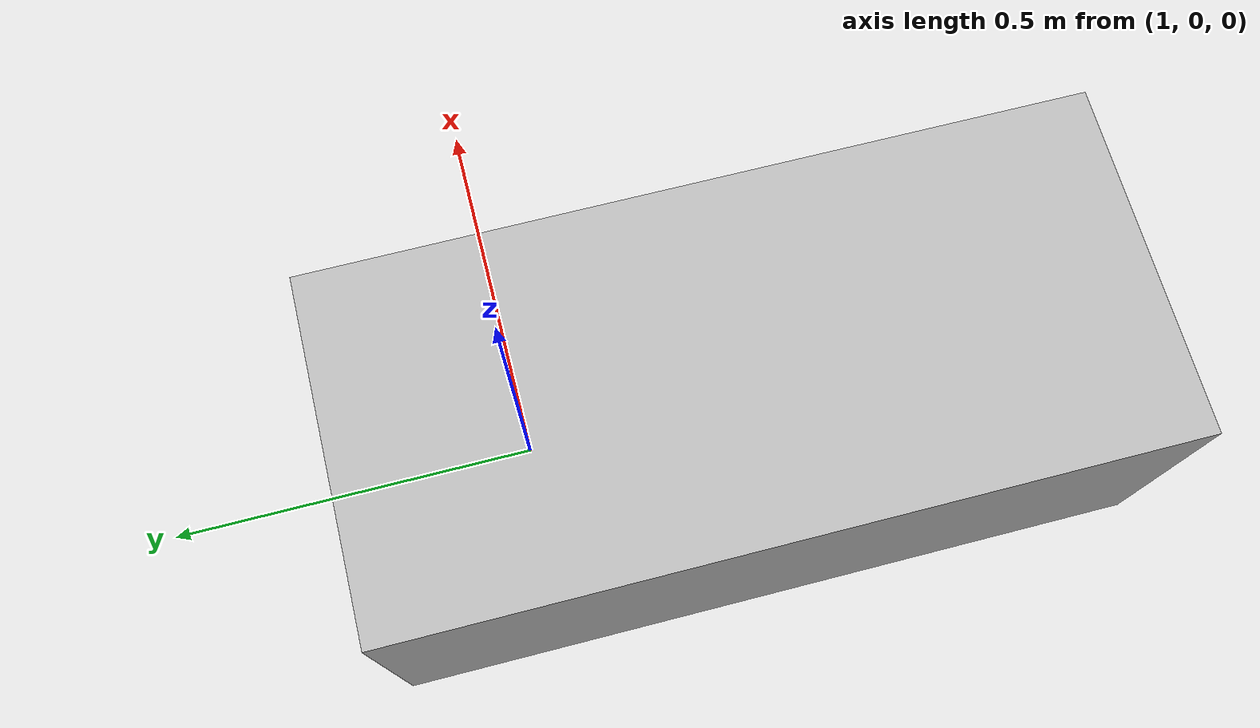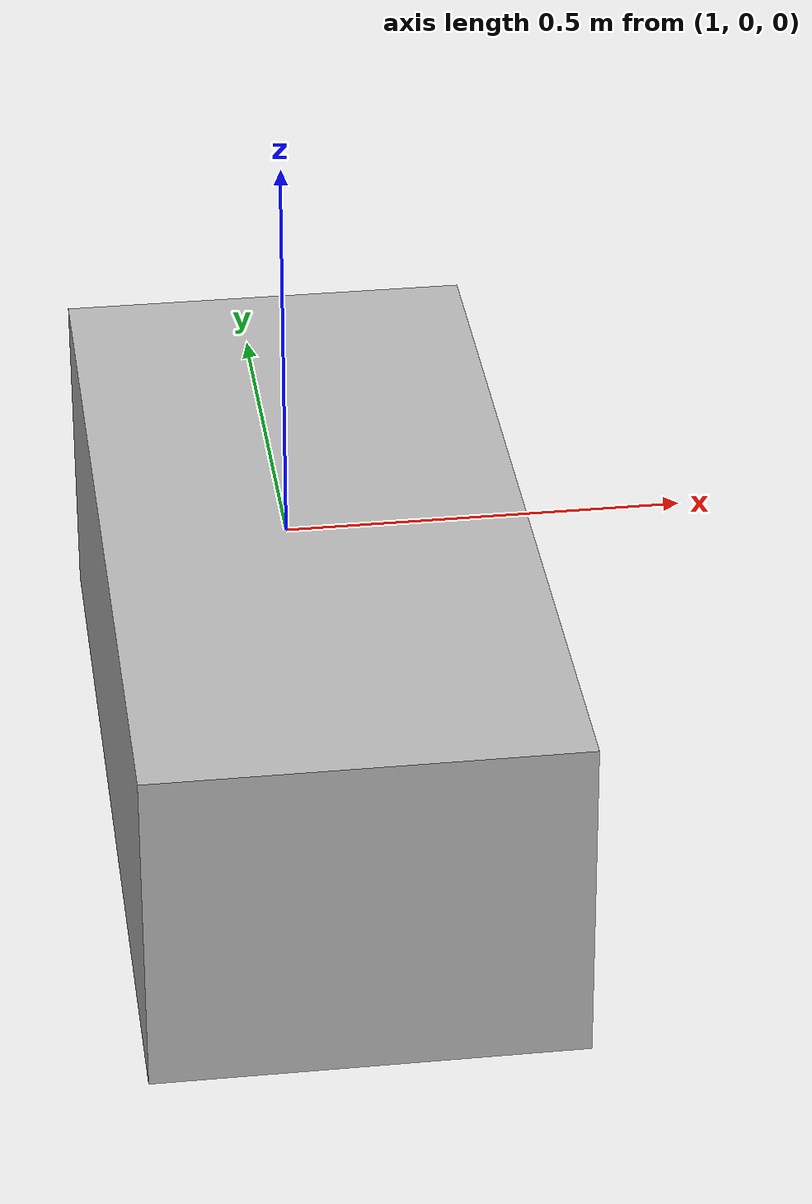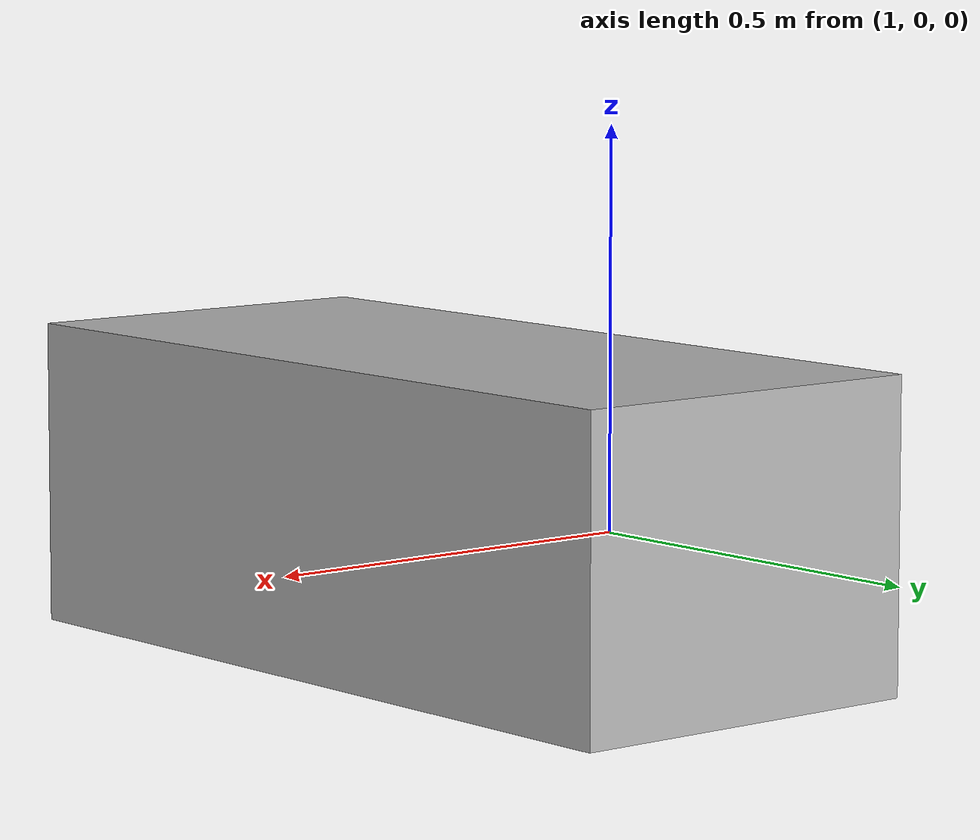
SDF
<?xml version="1.0" ?>
<sdf version="1.5">
  <model name="MPNet_TableCenter">
    <pose frame="world">1 -0.3 0.0 0 0 0</pose>
    <static>true</static>
    <link name="link">
      <inertial>
        <mass>0.1</mass>
      </inertial>
      <visual name="visual">
        <geometry>
          <box>
            <size>0.5 1.1 0.4</size>
          </box>
        </geometry>
      </visual>
    </link>
  </model>
</sdf>
